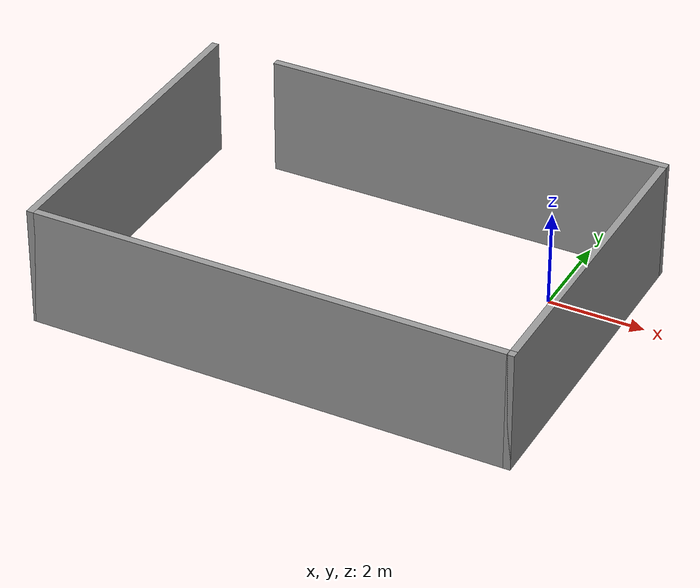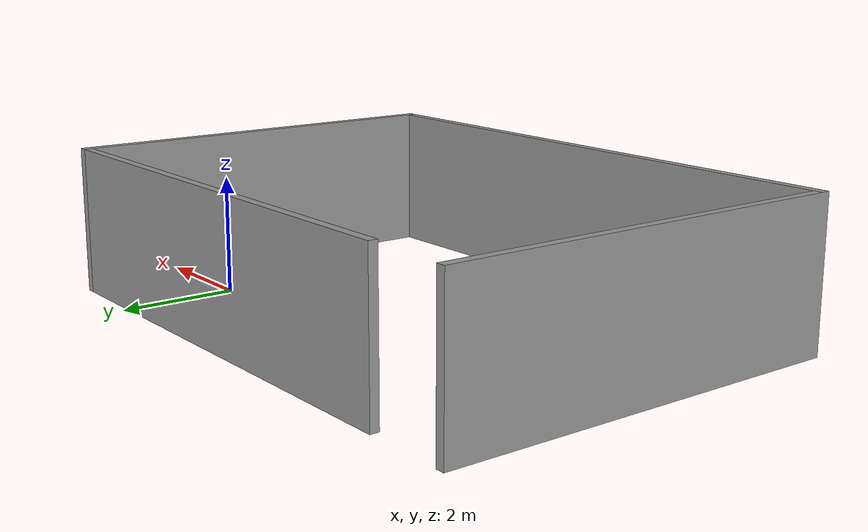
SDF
<?xml version='1.0'?>
<sdf version='1.7'>
  <model name='room'>
    <pose>-3.44291 -1.58229 0 0 -0 0</pose>
    <link name='Wall_0'>
      <collision name='Wall_0_Collision'>
        <geometry>
          <box>
            <size>7 0.15 2.5</size>
          </box>
        </geometry>
        <pose>0 0 1.25 0 -0 0</pose>
      </collision>
      <visual name='Wall_0_Visual'>
        <pose>0 0 1.25 0 -0 0</pose>
        <geometry>
          <box>
            <size>7 0.15 2.5</size>
          </box>
        </geometry>
        <material>
          <script>
            <uri>file://media/materials/scripts/gazebo.material</uri>
            <name>Gazebo/Grey</name>
          </script>
          <ambient>1 1 1 1</ambient>
        </material>
        <meta>
          <layer>0</layer>
        </meta>
      </visual>
      <pose>-4.925 -0 0 0 -0 -1.5708</pose>
    </link>
    <link name='Wall_1'>
      <collision name='Wall_1_Collision'>
        <geometry>
          <box>
            <size>10 0.15 2.5</size>
          </box>
        </geometry>
        <pose>0 0 1.25 0 -0 0</pose>
      </collision>
      <visual name='Wall_1_Visual'>
        <pose>0 0 1.25 0 -0 0</pose>
        <geometry>
          <box>
            <size>10 0.15 2.5</size>
          </box>
        </geometry>
        <material>
          <script>
            <uri>file://media/materials/scripts/gazebo.material</uri>
            <name>Gazebo/Grey</name>
          </script>
          <ambient>1 1 1 1</ambient>
        </material>
        <meta>
          <layer>0</layer>
        </meta>
      </visual>
      <pose>0 -3.425 0 0 -0 0</pose>
    </link>
    <link name='Wall_2'>
      <collision name='Wall_2_Collision'>
        <geometry>
          <box>
            <size>7 0.15 2.5</size>
          </box>
        </geometry>
        <pose>0 0 1.25 0 -0 0</pose>
      </collision>
      <visual name='Wall_2_Visual'>
        <pose>0 0 1.25 0 -0 0</pose>
        <geometry>
          <box>
            <size>7 0.15 2.5</size>
          </box>
        </geometry>
        <material>
          <script>
            <uri>file://media/materials/scripts/gazebo.material</uri>
            <name>Gazebo/Grey</name>
          </script>
          <ambient>1 1 1 1</ambient>
        </material>
        <meta>
          <layer>0</layer>
        </meta>
      </visual>
      <pose>4.925 -0 0 0 -0 1.5708</pose>
    </link>
    <link name='Wall_3'>
      <collision name='Wall_3_Collision'>
        <geometry>
          <box>
            <size>8.5 0.15 2.5</size>
          </box>
        </geometry>
        <pose>0 0 1.25 0 -0 0</pose>
      </collision>
      <visual name='Wall_3_Visual'>
        <pose>0 0 1.25 0 -0 0</pose>
        <geometry>
          <box>
            <size>8.5 0.15 2.5</size>
          </box>
        </geometry>
        <material>
          <script>
            <uri>file://media/materials/scripts/gazebo.material</uri>
            <name>Gazebo/Grey</name>
          </script>
          <ambient>1 1 1 1</ambient>
        </material>
        <meta>
          <layer>0</layer>
        </meta>
      </visual>
      <pose>0.75 3.425 0 0 -0 3.14159</pose>
    </link>
    <static>1</static>
  </model>
</sdf>
